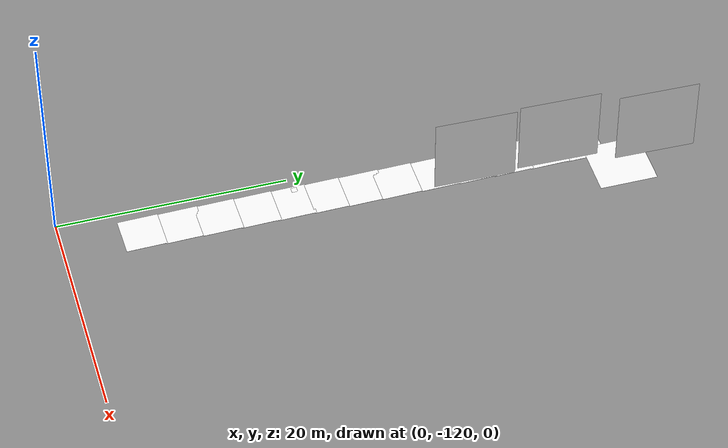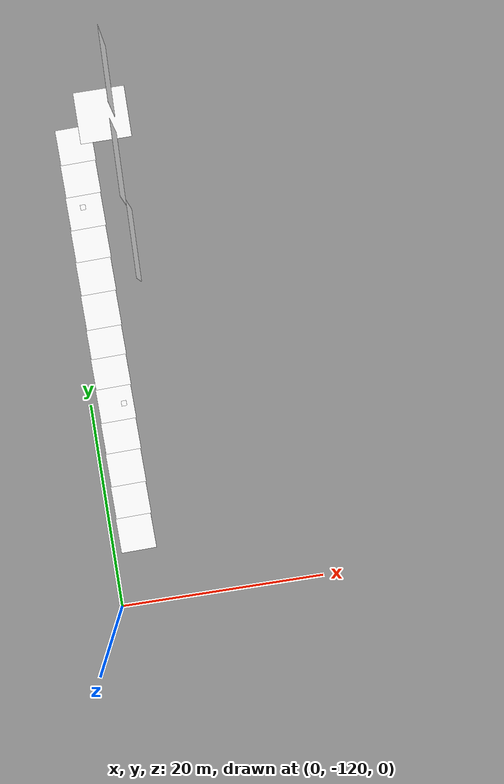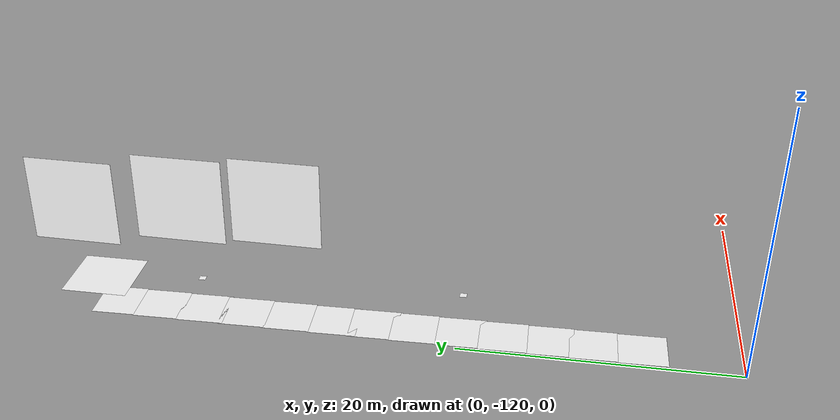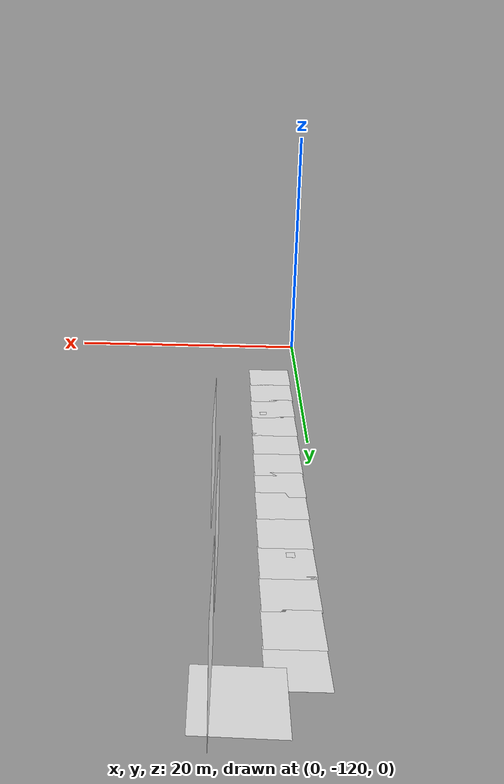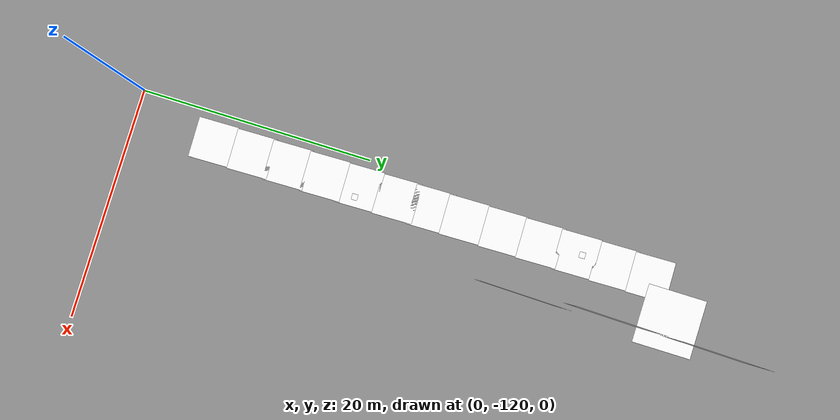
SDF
<sdf version="1.9">
 <world name="parkpilotworld">
  <physics type="ode">
   <max_step_size>0.01</max_step_size>
   <real_time_factor>1.0</real_time_factor>
   <real_time_update_rate>100</real_time_update_rate>
  </physics>
  <gravity>0 0 -9.8</gravity>
  <scene>
   <ambient>0.8 0.5 1</ambient>
   <grid>false</grid>
   <sky><clouds>true</clouds></sky>
   <shadows>1</shadows>
  </scene>
  <light name="sun" type="directional">
   <pose>0 0 100 0 0 0</pose>
   <diffuse>0.8 0.8 0.8 1</diffuse>
   <specular>0.2 0.2 0.2 1</specular>
   <direction>0.5 0.1 -0.9</direction>
  </light>
  <scene><sky><clouds>true</clouds></sky><shadows>1</shadows></scene>
  <model name="floor">
   <static>true</static>
   <pose>0 0 -0.1 0 0 0</pose>
   <link name="link">
    <collision name="collision"><geometry><box><size>150 150 0.2</size></box></geometry></collision>
   </link>
  </model>
  <noise><type>gaussian</type><mean>0.0</mean><stddev>0.007</stddev></noise>
  <model name="sign1">
   <static>true</static>
   <pose>2.41 -74.46 -0.25 0 0 -1.55</pose>
   <link name="link">
    <visual name="v">
     <geometry><plane><normal>0 0 1</normal><size>3.5 3.5</size></plane></geometry>
     <material>
      <diffuse>1 1 1 1</diffuse>
      <pbr><metal><albedo_map>model://cars/textures/sign.jpg</albedo_map></metal></pbr>
     </material>
    </visual>
   </link>
  </model>
  <model name="sign2">
   <static>true</static>
   <pose>2.41 -77.68 -0.25 0 0 -1.55</pose>
   <link name="link">
    <visual name="v">
     <geometry><plane><normal>0 0 1</normal><size>3.5 3.5</size></plane></geometry>
     <material>
      <diffuse>1 1 1 1</diffuse>
      <pbr><metal><albedo_map>model://cars/textures/sign.jpg</albedo_map></metal></pbr>
     </material>
    </visual>
   </link>
  </model>
  <model name="sign3">
   <static>true</static>
   <pose>2.41 -80.96 -0.25 0 0 -1.55</pose>
   <link name="link">
    <visual name="v">
     <geometry><plane><normal>0 0 1</normal><size>3.5 3.5</size></plane></geometry>
     <material>
      <diffuse>1 1 1 1</diffuse>
      <pbr><metal><albedo_map>model://cars/textures/sign.jpg</albedo_map></metal></pbr>
     </material>
    </visual>
   </link>
  </model>
  <model name="sign4">
   <static>true</static>
   <pose>2.41 -84.14 -0.25 0 0 -1.55</pose>
   <link name="link">
    <visual name="v">
     <geometry><plane><normal>0 0 1</normal><size>3.5 3.5</size></plane></geometry>
     <material>
      <diffuse>1 1 1 1</diffuse>
      <pbr><metal><albedo_map>model://cars/textures/sign.jpg</albedo_map></metal></pbr>
     </material>
    </visual>
   </link>
  </model>
  <model name="sign5">
   <static>true</static>
   <pose>2.41 -87.44 -0.25 0 0 -1.55</pose>
   <link name="link">
    <visual name="v">
     <geometry><plane><normal>0 0 1</normal><size>3.5 3.5</size></plane></geometry>
     <material>
      <diffuse>1 1 1 1</diffuse>
      <pbr><metal><albedo_map>model://cars/textures/sign.jpg</albedo_map></metal></pbr>
     </material>
    </visual>
   </link>
  </model>
  <model name="sign6">
   <static>true</static>
   <pose>2.41 -90.90 -0.25 0 0 -1.55</pose>
   <link name="link">
    <visual name="v">
     <geometry><plane><normal>0 0 1</normal><size>3.5 3.5</size></plane></geometry>
     <material>
      <diffuse>1 1 1 1</diffuse>
      <pbr><metal><albedo_map>model://cars/textures/sign.jpg</albedo_map></metal></pbr>
     </material>
    </visual>
   </link>
  </model>
  <model name="sign7">
   <static>true</static>
   <pose>2.41 -93.81 -0.25 0 0 -1.55</pose>
   <link name="link">
    <visual name="v">
     <geometry><plane><normal>0 0 1</normal><size>3.5 3.5</size></plane></geometry>
     <material>
      <diffuse>1 1 1 1</diffuse>
      <pbr><metal><albedo_map>model://cars/textures/sign.jpg</albedo_map></metal></pbr>
     </material>
    </visual>
   </link>
  </model>
  <model name="sign8">
   <static>true</static>
   <pose>2.41 -96.84 -0.25 0 0 -1.55</pose>
   <link name="link">
    <visual name="v">
     <geometry><plane><normal>0 0 1</normal><size>3.5 3.5</size></plane></geometry>
     <material>
      <diffuse>1 1 1 1</diffuse>
      <pbr><metal><albedo_map>model://cars/textures/sign.jpg</albedo_map></metal></pbr>
     </material>
    </visual>
   </link>
  </model>
  <model name="sign9">
   <static>true</static>
   <pose>2.41 -100.18 -0.25 0 0 -1.55</pose>
   <link name="link">
    <visual name="v">
     <geometry><plane><normal>0 0 1</normal><size>3.5 3.5</size></plane></geometry>
     <material>
      <diffuse>1 1 1 1</diffuse>
      <pbr><metal><albedo_map>model://cars/textures/sign.jpg</albedo_map></metal></pbr>
     </material>
    </visual>
   </link>
  </model>
  <model name="sign10">
   <static>true</static>
   <pose>2.41 -103.24 -0.25 0 0 -1.55</pose>
   <link name="link">
    <visual name="v">
     <geometry><plane><normal>0 0 1</normal><size>3.5 3.5</size></plane></geometry>
     <material>
      <diffuse>1 1 1 1</diffuse>
      <pbr><metal><albedo_map>model://cars/textures/sign.jpg</albedo_map></metal></pbr>
     </material>
    </visual>
   </link>
  </model>
  <model name="sign11">
   <static>true</static>
   <pose>2.41 -106.52 -0.25 0 0 -1.55</pose>
   <link name="link">
    <visual name="v">
     <geometry><plane><normal>0 0 1</normal><size>3.5 3.5</size></plane></geometry>
     <material>
      <diffuse>1 1 1 1</diffuse>
      <pbr><metal><albedo_map>model://cars/textures/sign.jpg</albedo_map></metal></pbr>
     </material>
    </visual>
   </link>
  </model>
  <model name="sign12">
   <static>true</static>
   <pose>2.41 -109.69 -0.25 0 0 -1.55</pose>
   <link name="link">
    <visual name="v">
     <geometry><plane><normal>0 0 1</normal><size>3.5 3.5</size></plane></geometry>
     <material>
      <diffuse>1 1 1 1</diffuse>
      <pbr><metal><albedo_map>model://cars/textures/sign.jpg</albedo_map></metal></pbr>
     </material>
    </visual>
   </link>
  </model>
  <model name="sign13">
   <static>true</static>
   <pose>2.41 -113.11 -0.25 0 0 -1.55</pose>
   <link name="link">
    <visual name="v">
     <geometry><plane><normal>0 0 1</normal><size>3.5 3.5</size></plane></geometry>
     <material>
      <diffuse>1 1 1 1</diffuse>
      <pbr><metal><albedo_map>model://cars/textures/sign.jpg</albedo_map></metal></pbr>
     </material>
    </visual>
   </link>
  </model>
  <model name="Tuwaiq-logo">
   <static>true</static>
   <pose>5.50 -71.89 -0.17 0 0 -1.59</pose>
   <link name="link">
    <visual name="v">
     <geometry><plane><normal>0 0 1</normal><size>5 5</size></plane></geometry>
     <material>
      <diffuse>1 1 1 1</diffuse>
      <pbr><metal><albedo_map>model://cars/textures/logot.png</albedo_map></metal></pbr>
     </material>
    </visual>
   </link>
  </model>
  <model name="Tuwaiq_building">
   <static>true</static>
   <pose>6.73 -78.04 6.35 1.57 0 -1.59</pose>
   <link name="link">
    <visual name="v">
     <geometry><plane><normal>0 0 1</normal><size>7 7</size></plane></geometry>
     <material>
      <diffuse>1 1 1 1</diffuse>
      <pbr><metal><albedo_map>model://cars/textures/tuwaiqbuilding.jpg</albedo_map></metal></pbr>
     </material>
    </visual>
   </link>
  </model>
  <model name="apple_building">
   <static>true</static>
   <pose>7.05 -85.44 6.48 1.57 0 -1.59</pose>
   <link name="link">
    <visual name="v">
     <geometry><plane><normal>0 0 1</normal><size>7 7</size></plane></geometry>
     <material>
      <diffuse>1 1 1 1</diffuse>
      <pbr><metal><albedo_map>model://cars/textures/applebuilding.png</albedo_map></metal></pbr>
     </material>
    </visual>
   </link>
  </model>
  <model name="special_building">
   <static>true</static>
   <pose>6.90 -69.38 5.36 1.57 0 -1.59</pose>
   <link name="link">
    <visual name="v">
     <geometry><plane><normal>0 0 1</normal><size>7 7</size></plane></geometry>
     <material>
      <diffuse>1 1 1 1</diffuse>
      <pbr><metal><albedo_map>model://cars/textures/barcode2.jpg</albedo_map></metal></pbr>
     </material>
    </visual>
   </link>
  </model>
  <model name="barcodePass1">
   <static>true</static>
   <pose>2.48 -80.98 2.37 0 0 -1.55</pose>
   <link name="link">
    <visual name="visual">
     <geometry><plane><normal>0 0 1</normal><size>0.5 0.5</size></plane></geometry>
     <material>
      <diffuse>1 1 1 1</diffuse>
      <pbr><metal><albedo_map>model://cars/textures/barcode.jpg</albedo_map></metal></pbr>
     </material>
    </visual>
   </link>
  </model>
  <model name="barcodePass2">
   <static>true</static>
   <pose>3.45 -100.16 2.30 0 0 -1.55</pose>
   <link name="link">
    <visual name="visual">
     <geometry><plane><normal>0 0 1</normal><size>0.5 0.5</size></plane></geometry>
     <material>
      <diffuse>1 1 1 1</diffuse>
      <pbr><metal><albedo_map>model://cars/textures/barcode.jpg</albedo_map></metal></pbr>
     </material>
    </visual>
   </link>
  </model>
  <spherical_coordinates>
   <surface_model>EARTH_WGS84</surface_model>
   <latitude_deg>24.8747</latitude_deg>
   <longitude_deg>46.6382</longitude_deg>
   <elevation>5.0</elevation>
  </spherical_coordinates>
 </world>
</sdf>
